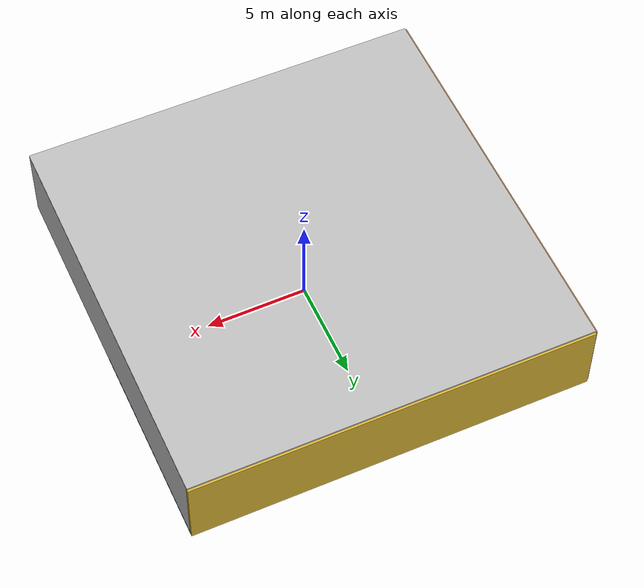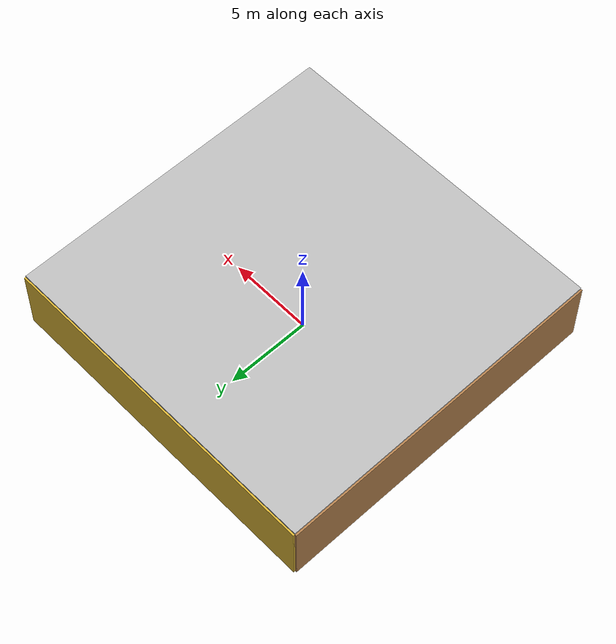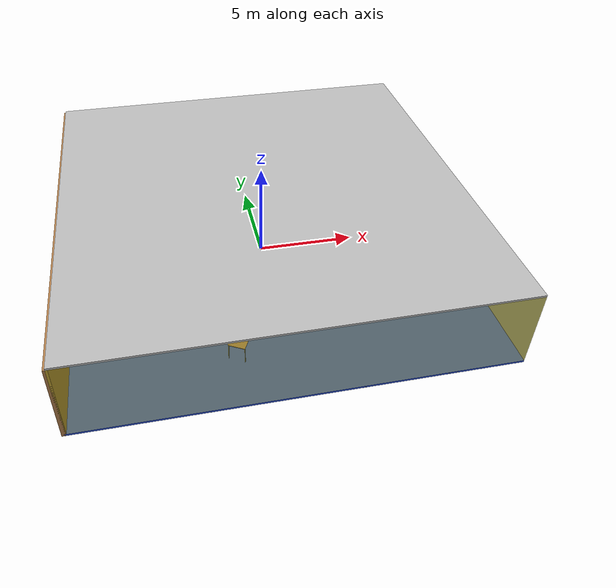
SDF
<sdf version="1.4">
 <world name="default">
  <physics type="ode">
   <max_step_size>0.001</max_step_size>
   <real_time_factor>1</real_time_factor>
   <real_time_update_rate>1000</real_time_update_rate>
   <gravity>0 0 -9.8</gravity>
  </physics>
  <scene><ambient>0.4 0.4 0.4 1</ambient><background>0.7 0.7 0.7 1</background><shadows>1</shadows></scene>
  <model name="Surrounding">
   <static>1</static>
   <link name="Ceiling">
    <collision name="Ceiling_Collision"><geometry><box><size>20 20 0.1</size></box></geometry></collision>
    <visual name="Ceiling_Visual">
     <geometry><box><size>20 20 0.1</size></box></geometry>
     <material>
      <script><uri>file://media/materials/scripts/gazebo.material</uri><name>Gazebo/LightOn</name></script>
     </material>
    </visual>
    <pose>0 0 4.05 0 0 0</pose>
   </link>
   <link name="Wall_South">
    <collision name="Wall_South_Collision">
     <geometry><box><size>20 0 4</size></box></geometry>
     <pose>0 0 2 0 -0 0</pose>
    </collision>
    <visual name="Wall_South_Visual">
     <pose>0 0 2 0 -0 0</pose>
     <geometry><box><size>20 0 4</size></box></geometry>
     <material>
      <script>
       <uri>file://media/materials/scripts/gazebo.material</uri>
       <name>Gazebo/YellowTransparent</name>
      </script>
     </material>
    </visual>
    <velocity_decay><linear>0</linear><angular>0</angular></velocity_decay>
    <pose>0 -10 0 0 -0 0</pose>
   </link>
   <link name="Wall_East">
    <collision name="Wall_21_Collision">
     <geometry><box><size>20 0 4</size></box></geometry>
     <pose>0 0 2 0 -0 0</pose>
    </collision>
    <visual name="Wall_21_Visual">
     <pose>0 0 2 0 -0 0</pose>
     <geometry><box><size>20 0 4</size></box></geometry>
     <material>
      <script><uri>file://media/materials/scripts/gazebo.material</uri><name>Gazebo/WhiteGlow</name></script>
     </material>
    </visual>
    <velocity_decay><linear>0</linear><angular>0</angular></velocity_decay>
    <pose>10 0 0 0 -0 1.5708</pose>
   </link>
   <link name="Wall_North">
    <collision name="Wall_22_Collision">
     <geometry><box><size>20 0.2 4</size></box></geometry>
     <pose>0 0 2 0 -0 0</pose>
    </collision>
    <visual name="Wall_22_Visual">
     <pose>0 0 2 0 -0 0</pose>
     <geometry><box><size>20 0.2 4</size></box></geometry>
     <material>
      <script><uri>file://media/materials/scripts/gazebo.material</uri><name>Gazebo/Gold</name></script>
     </material>
    </visual>
    <velocity_decay><linear>0</linear><angular>0</angular></velocity_decay>
    <pose>0 10 0 0 -0 0</pose>
   </link>
   <link name="Wall_West">
    <collision name="Wall_23_Collision">
     <geometry><box><size>20 0.2 4</size></box></geometry>
     <pose>0 0 2 0 -0 0</pose>
    </collision>
    <visual name="Wall_23_Visual">
     <pose>0 0 2 0 -0 0</pose>
     <geometry><box><size>20 0.2 4</size></box></geometry>
     <material>
      <script><uri>file://media/materials/scripts/gazebo.material</uri><name>Gazebo/Wood</name></script>
     </material>
    </visual>
    <velocity_decay><linear>0</linear><angular>0</angular></velocity_decay>
    <pose>-10 0 0 0 0 -1.5708</pose>
   </link>
   <link name="Ground_link">
    <collision name="collision">
     <pose>0 0 .05 0 -0 0</pose>
     <geometry><box><size>20 20 0.1</size></box></geometry>
    </collision>
    <visual name="visual">
     <pose>0 0 .05 0 -0 0</pose>
     <geometry><box><size>20 20 0.1</size></box></geometry>
     <material>
      <script><uri>file://media/materials/scripts/gazebo.material</uri><name>Gazebo/BlueLaser</name></script>
     </material>
    </visual>
   </link>
   <static>1</static>
  </model>
  <spherical_coordinates>
   <surface_model>EARTH_WGS84</surface_model>
   <latitude_deg>0</latitude_deg>
   <longitude_deg>0</longitude_deg>
   <elevation>0</elevation>
   <heading_deg>0</heading_deg>
  </spherical_coordinates>
  <light name="lightball_0" type="diffuse">
   <diffuse>0.8 0.8 0.8 1</diffuse>
   <specular>0.2 0.2 0.2 1</specular>
   <attenuation>
    <range>100</range>
    <constant>0.7</constant>
    <linear>0.01</linear>
    <quadratic>0.001</quadratic>
   </attenuation>
   <direction>-0.5 0.1 -0.9</direction>
   <pose>7.27669670618 -1.74489615405 1.97683494539 0 0 0</pose>
  </light>
  <light name="lightball_1" type="diffuse">
   <diffuse>0.8 0.8 0.8 1</diffuse>
   <specular>0.2 0.2 0.2 1</specular>
   <attenuation>
    <range>100</range>
    <constant>0.7</constant>
    <linear>0.01</linear>
    <quadratic>0.001</quadratic>
   </attenuation>
   <direction>-0.5 0.1 -0.9</direction>
   <pose>8.19736162771 -4.23634069533 1.01929934891 0 0 0</pose>
  </light>
  <light name="lightball_2" type="diffuse">
   <diffuse>0.8 0.8 0.8 1</diffuse>
   <specular>0.2 0.2 0.2 1</specular>
   <attenuation>
    <range>100</range>
    <constant>0.7</constant>
    <linear>0.01</linear>
    <quadratic>0.001</quadratic>
   </attenuation>
   <direction>-0.5 0.1 -0.9</direction>
   <pose>-6.88017945424 -4.5725959972 2.33438134413 0 0 0</pose>
  </light>
  <light name="lightball_3" type="diffuse">
   <diffuse>0.8 0.8 0.8 1</diffuse>
   <specular>0.2 0.2 0.2 1</specular>
   <attenuation>
    <range>100</range>
    <constant>0.7</constant>
    <linear>0.01</linear>
    <quadratic>0.001</quadratic>
   </attenuation>
   <direction>-0.5 0.1 -0.9</direction>
   <pose>6.15492804023 -6.01244837879 0.748864949022 0 0 0</pose>
  </light>
  <light name="lightball_4" type="diffuse">
   <diffuse>0.8 0.8 0.8 1</diffuse>
   <specular>0.2 0.2 0.2 1</specular>
   <attenuation>
    <range>100</range>
    <constant>0.7</constant>
    <linear>0.01</linear>
    <quadratic>0.001</quadratic>
   </attenuation>
   <direction>-0.5 0.1 -0.9</direction>
   <pose>-0.836308185654 -1.73037985487 0.788656056112 0 0 0</pose>
  </light>
  <light name="lightball_5" type="diffuse">
   <diffuse>0.8 0.8 0.8 1</diffuse>
   <specular>0.2 0.2 0.2 1</specular>
   <attenuation>
    <range>100</range>
    <constant>0.7</constant>
    <linear>0.01</linear>
    <quadratic>0.001</quadratic>
   </attenuation>
   <direction>-0.5 0.1 -0.9</direction>
   <pose>-3.67572528373 -9.7695210893 2.2463210103 0 0 0</pose>
  </light>
  <light name="lightball_6" type="diffuse">
   <diffuse>0.8 0.8 0.8 1</diffuse>
   <specular>0.2 0.2 0.2 1</specular>
   <attenuation>
    <range>100</range>
    <constant>0.7</constant>
    <linear>0.01</linear>
    <quadratic>0.001</quadratic>
   </attenuation>
   <direction>-0.5 0.1 -0.9</direction>
   <pose>-2.25548648234 2.80198653899 0.519554518759 0 0 0</pose>
  </light>
  <light name="lightball_7" type="diffuse">
   <diffuse>0.8 0.8 0.8 1</diffuse>
   <specular>0.2 0.2 0.2 1</specular>
   <attenuation>
    <range>100</range>
    <constant>0.7</constant>
    <linear>0.01</linear>
    <quadratic>0.001</quadratic>
   </attenuation>
   <direction>-0.5 0.1 -0.9</direction>
   <pose>-4.2696286775 -3.00034316257 1.88822229458 0 0 0</pose>
  </light>
  <light name="lightball_8" type="diffuse">
   <diffuse>0.8 0.8 0.8 1</diffuse>
   <specular>0.2 0.2 0.2 1</specular>
   <attenuation>
    <range>100</range>
    <constant>0.7</constant>
    <linear>0.01</linear>
    <quadratic>0.001</quadratic>
   </attenuation>
   <direction>-0.5 0.1 -0.9</direction>
   <pose>1.43575724032 4.74026874118 1.20976178939 0 0 0</pose>
  </light>
  <light name="lightball_9" type="diffuse">
   <diffuse>0.8 0.8 0.8 1</diffuse>
   <specular>0.2 0.2 0.2 1</specular>
   <attenuation>
    <range>100</range>
    <constant>0.7</constant>
    <linear>0.01</linear>
    <quadratic>0.001</quadratic>
   </attenuation>
   <direction>-0.5 0.1 -0.9</direction>
   <pose>6.1782698658 -5.24697569793 2.62936626123 0 0 0</pose>
  </light>
  <light name="lightball_10" type="diffuse">
   <diffuse>0.8 0.8 0.8 1</diffuse>
   <specular>0.2 0.2 0.2 1</specular>
   <attenuation>
    <range>100</range>
    <constant>0.7</constant>
    <linear>0.01</linear>
    <quadratic>0.001</quadratic>
   </attenuation>
   <direction>-0.5 0.1 -0.9</direction>
   <pose>-1.32625002946 6.60933415716 2.27185589587 0 0 0</pose>
  </light>
  <light name="lightball_11" type="diffuse">
   <diffuse>0.8 0.8 0.8 1</diffuse>
   <specular>0.2 0.2 0.2 1</specular>
   <attenuation>
    <range>100</range>
    <constant>0.7</constant>
    <linear>0.01</linear>
    <quadratic>0.001</quadratic>
   </attenuation>
   <direction>-0.5 0.1 -0.9</direction>
   <pose>9.15417011335 7.35299349008 1.24861612855 0 0 0</pose>
  </light>
  <include><uri>model://cabinet</uri><pose>-7.60404254815 2.18772997674 0 0 0 1.94349926351</pose></include>
  <include>
   <uri>model://robocup_3Dsim_goal</uri>
   <pose>-7.16884467087 7.99783830897 0 0 0 2.06823647516</pose>
  </include>
  <include><uri>model://table</uri><pose>-2.24360198345 -6.92210270293 0 0 0 1.08539678673</pose></include>
 </world>
</sdf>

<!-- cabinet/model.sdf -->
<sdf version="1.5">
  <model name="cabinet">
    <static>true</static>
    <link name="cabinet_bottom_plate">
      <inertial>
        <pose>0 0 -1 0 0 0</pose>
        <inertia>
          <ixx>2.050000</ixx>
          <ixy>0</ixy>
          <ixz>0</ixz>
          <iyy>2.050000</iyy>
          <iyz>0</iyz>
          <izz>2.050000</izz>
        </inertia>
        <mass>25.000000</mass>
      </inertial>
      <collision name="cabinet_bottom_plate_geom">
        <pose>0 0 0.010000 0 0 0</pose>
        <geometry>
          <box>
            <size>0.450000 0.450000 0.020000</size>
          </box>
        </geometry>
      </collision>
      <visual name="cabinet_bottom_plate_geom_visual">
        <pose>0 0 0.010000 0 0 0</pose>
        <geometry>
          <box>
            <size>0.450000 0.450000 0.020000</size>
          </box>
        </geometry>
        <material>
          <script>
            <uri>model://media/materials/scripts/gazebo.material</uri>
            <name>Gazebo/Wood</name>
          </script>
        </material>
      </visual>
      <collision name="cabinet_bottom_plate_geom_cabinet_back_plate">
        <pose>0.235000 0 0.510000 0 0 0</pose>
        <geometry>
          <box>
            <size>0.020000 0.450000 1.020000</size>
          </box>
        </geometry>
      </collision>
      <visual name="cabinet_bottom_plate_geom_cabinet_back_plate_visual">
        <pose>0.235000 0 0.510000 0 0 0</pose>
        <geometry>
          <box>
            <size>0.020000 0.450000 1.020000</size>
          </box>
        </geometry>
        <material>
          <script>
            <uri>model://media/materials/scripts/gazebo.material</uri>
            <name>Gazebo/Wood</name>
          </script>
        </material>
      </visual>
      <collision name="cabinet_bottom_plate_geom_cabinet_left_plate">
        <pose>0 0.235000 0.510000 0 0 0</pose>
        <geometry>
          <box>
            <size>0.450000 0.020000 1.020000</size>
          </box>
        </geometry>
      </collision>
      <visual name="cabinet_bottom_plate_geom_cabinet_left_plate_visual">
        <pose>0 0.235000 0.510000 0 0 0</pose>
        <geometry>
          <box>
            <size>0.450000 0.020000 1.020000</size>
          </box>
        </geometry>
        <material>
          <script>
            <uri>model://media/materials/scripts/gazebo.material</uri>
            <name>Gazebo/Wood</name>
          </script>
        </material>
      </visual>
      <collision name="cabinet_bottom_plate_geom_cabinet_middle_plate">
        <pose>0 0 0.510000 0 0 0</pose>
        <geometry>
          <box>
            <size>0.450000 0.450000 0.020000</size>
          </box>
        </geometry>
      </collision>
      <visual name="cabinet_bottom_plate_geom_cabinet_middle_plate_visual">
        <pose>0 0 0.510000 0 0 0</pose>
        <geometry>
          <box>
            <size>0.450000 0.450000 0.020000</size>
          </box>
        </geometry>
        <material>
          <script>
            <uri>model://media/materials/scripts/gazebo.material</uri>
            <name>Gazebo/Wood</name>
          </script>
        </material>
      </visual>
      <collision name="cabinet_bottom_plate_geom_cabinet_right_plate">
        <pose>0 -0.235000 0.510000 0 0 0</pose>
        <geometry>
          <box>
            <size>0.450000 0.020000 1.020000</size>
          </box>
        </geometry>
      </collision>
      <visual name="cabinet_bottom_plate_geom_cabinet_right_plate_visual">
        <pose>0 -0.235000 0.510000 0 0 0</pose>
        <geometry>
          <box>
            <size>0.450000 0.020000 1.020000</size>
          </box>
        </geometry>
        <material>
          <script>
            <uri>model://media/materials/scripts/gazebo.material</uri>
            <name>Gazebo/Wood</name>
          </script>
        </material>
      </visual>
      <collision name="cabinet_bottom_plate_geom_cabinet_top_plate">
        <pose>0 0 1.010000 0 0 0</pose>
        <geometry>
          <box>
            <size>0.450000 0.450000 0.020000</size>
          </box>
        </geometry>
      </collision>
      <visual name="cabinet_bottom_plate_geom_cabinet_top_plate_visual">
        <pose>0 0 1.010000 0 0 0</pose>
        <geometry>
          <box>
            <size>0.450000 0.450000 0.020000</size>
          </box>
        </geometry>
        <material>
          <script>
            <uri>model://media/materials/scripts/gazebo.material</uri>
            <name>Gazebo/Wood</name>
          </script>
        </material>
      </visual>
    </link>
  </model>
</sdf>

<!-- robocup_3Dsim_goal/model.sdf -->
<sdf version="1.5">
  <model name="robocup_3d_goal">
    <static>true</static>
    <link name="left_post">
      <pose>0 1.05 0.45 0 0 0</pose>
      <collision name="collision">
        <geometry>
          <cylinder>
            <radius>0.05</radius>
            <length>0.9</length>
          </cylinder>
        </geometry>
      </collision>
      <visual name="visual">
        <geometry>
          <cylinder>
            <radius>0.05</radius>
            <length>0.9</length>
          </cylinder>
        </geometry>
        <material>
          <script>
            <uri>file://media/materials/scripts/gazebo.material</uri>
            <name>Gazebo/ZincYellow</name>
          </script>
        </material>
      </visual>
    </link>
    <link name="left_support_horiz_lower">
      <pose>0.30 1.05 0.01 0 0 0</pose>
      <collision name="collision">
        <geometry>
          <box>
            <size>0.50 0.02 0.02</size>
          </box>
        </geometry>
      </collision>
      <visual name="visual">
        <geometry>
          <box>
            <size>0.50 0.02 0.02</size>
          </box>
        </geometry>
        <material>
          <script>
            <uri>file://media/materials/scripts/gazebo.material</uri>
            <name>Gazebo/White</name>
          </script>
        </material>
      </visual>
    </link>
    <link name="left_support_horiz_upper">
      <pose>0.30 1.05 0.79 0 0 0</pose>
      <collision name="collision">
        <geometry>
          <box>
            <size>0.50 0.02 0.02</size>
          </box>
        </geometry>
      </collision>
      <visual name="visual">
        <geometry>
          <box>
            <size>0.50 0.02 0.02</size>
          </box>
        </geometry>
        <material>
          <script>
            <uri>file://media/materials/scripts/gazebo.material</uri>
            <name>Gazebo/White</name>
          </script>
        </material>
      </visual>
    </link>
    <link name="left_support_vertical">
      <pose>0.56 1.05 0.4 0 1.5708 0</pose>
      <collision name="collision">
        <geometry>
          <box>
            <size>0.80 0.02 0.02</size>
          </box>
        </geometry>
      </collision>
      <visual name="visual">
        <geometry>
          <box>
            <size>0.80 0.02 0.02</size>
          </box>
        </geometry>
        <material>
          <script>
            <uri>file://media/materials/scripts/gazebo.material</uri>
            <name>Gazebo/White</name>
          </script>
        </material>
      </visual>
    </link>
    <link name="right_support_horiz_lower">
      <pose>0.30 -1.05 0.01 0 0 0</pose>
      <collision name="collision">
        <geometry>
          <box>
            <size>0.50 0.02 0.02</size>
          </box>
        </geometry>
      </collision>
      <visual name="visual">
        <geometry>
          <box>
            <size>0.50 0.02 0.02</size>
          </box>
        </geometry>
        <material>
          <script>
            <uri>file://media/materials/scripts/gazebo.material</uri>
            <name>Gazebo/White</name>
          </script>
        </material>
      </visual>
    </link>
    <link name="right_support_horiz_upper">
      <pose>0.30 -1.05 0.79 0 0 0</pose>
      <collision name="collision">
        <geometry>
          <box>
            <size>0.50 0.02 0.02</size>
          </box>
        </geometry>
      </collision>
      <visual name="visual">
        <geometry>
          <box>
            <size>0.50 0.02 0.02</size>
          </box>
        </geometry>
        <material>
          <script>
            <uri>file://media/materials/scripts/gazebo.material</uri>
            <name>Gazebo/White</name>
          </script>
        </material>
      </visual>
    </link>
    <link name="right_support_vertical">
      <pose>0.56 -1.05 0.4 0 1.5708 0</pose>
      <collision name="collision">
        <geometry>
          <box>
            <size>0.80 0.02 0.02</size>
          </box>
        </geometry>
      </collision>
      <visual name="visual">
        <geometry>
          <box>
            <size>0.80 0.02 0.02</size>
          </box>
        </geometry>
        <material>
          <script>
            <uri>file://media/materials/scripts/gazebo.material</uri>
            <name>Gazebo/White</name>
          </script>
        </material>
      </visual>
    </link>
    <link name="center_support_horiz_lower">
      <pose>0.56 0 0.01 0 1.5708 0</pose>
      <collision name="collision">
        <geometry>
          <box>
            <size>0.02 2.08 0.02</size>
          </box>
        </geometry>
      </collision>
      <visual name="visual">
        <geometry>
          <box>
            <size>0.02 2.08 0.02</size>
          </box>
        </geometry>
        <material>
          <script>
            <uri>file://media/materials/scripts/gazebo.material</uri>
            <name>Gazebo/White</name>
          </script>
        </material>
      </visual>
    </link>
    <link name="center_support_horiz_upper">
      <pose>0.56 0 0.79 0 1.5708 0</pose>
      <collision name="collision">
        <geometry>
          <box>
            <size>0.02 2.08 0.02</size>
          </box>
        </geometry>
      </collision>
      <visual name="visual">
        <geometry>
          <box>
            <size>0.02 2.08 0.02</size>
          </box>
        </geometry>
        <material>
          <script>
            <uri>file://media/materials/scripts/gazebo.material</uri>
            <name>Gazebo/White</name>
          </script>
        </material>
      </visual>
    </link>
    <link name="right_post">
      <pose>0 -1.05 0.45 0 0 0</pose>
      <collision name="collision">
        <geometry>
          <cylinder>
            <radius>0.05</radius>
            <length>0.9</length>
          </cylinder>
        </geometry>
      </collision>
      <visual name="visual">
        <geometry>
          <cylinder>
            <radius>0.05</radius>
            <length>0.9</length>
          </cylinder>
        </geometry>
        <material>
          <script>
            <uri>file://media/materials/scripts/gazebo.material</uri>
            <name>Gazebo/ZincYellow</name>
          </script>
        </material>
      </visual>
    </link>
    <link name="crossbar">
      <pose>0 0 0.85 1.57 1.57 0</pose>
      <collision name="collision">
        <geometry>
          <cylinder>
            <radius>0.05</radius>
            <length>2.0</length>
          </cylinder>
        </geometry>
      </collision>
      <visual name="visual">
        <geometry>
          <cylinder>
            <radius>0.05</radius>
            <length>2.0</length>
          </cylinder>
        </geometry>
        <material>
          <script>
            <uri>file://media/materials/scripts/gazebo.material</uri>
            <name>Gazebo/ZincYellow</name>
          </script>
        </material>
      </visual>
    </link>
    <link name="center_net">
      <pose>0.56 0 0.40 0 0 0</pose>
      <collision name="collision">
        <geometry>
          <box>
            <size>0.01 2.1 0.80</size>
          </box>
        </geometry>
      </collision>
      <visual name="visual">
        <geometry>
          <box>
            <size>0.01 2.1 0.80</size>
          </box>
        </geometry>
        <material>
          <script>
            <uri>model://../model_source/models/robocup09_spl_field/materials/scripts/</uri>
            <uri>model://../model_source/models/robocup09_spl_field/materials/textures/</uri>
            <name>RoboCup/Net</name>
          </script>
        </material>
      </visual>
    </link>
    <link name="left_net">
      <pose>0.30 1.05 0.40 0 0 0</pose>
      <collision name="collision">
        <geometry>
          <box>
            <size>0.50 0.01 0.76</size>
          </box>
        </geometry>
      </collision>
      <visual name="visual">
        <geometry>
          <box>
            <size>0.50 0.01 0.76</size>
          </box>
        </geometry>
        <material>
          <script>
            <uri>model://../model_source/models/robocup09_spl_field/materials/scripts/</uri>
            <uri>model://../model_source/models/robocup09_spl_field/materials/textures/</uri>
            <name>RoboCup/Net</name>
          </script>
        </material>
      </visual>
    </link>
    <link name="right_net">
      <pose>0.30 -1.05 0.40 0 0 0</pose>
      <collision name="collision">
        <geometry>
          <box>
            <size>0.50 0.01 0.76</size>
          </box>
        </geometry>
      </collision>
      <visual name="visual">
        <geometry>
          <box>
            <size>0.50 0.01 0.76</size>
          </box>
        </geometry>
        <material>
          <script>
            <uri>model://../model_source/models/robocup09_spl_field/materials/scripts/</uri>
            <uri>model://../model_source/models/robocup09_spl_field/materials/textures/</uri>
            <name>RoboCup/Net</name>
          </script>
        </material>
      </visual>
    </link>
  </model>
</sdf>

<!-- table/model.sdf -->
<sdf version="1.5">
  <model name="table">
    <static>true</static>
    <link name="link">
      <collision name="surface">
        <pose>0 0 1.0 0 0 0</pose>
        <geometry>
          <box>
            <size>1.5 0.8 0.03</size>
          </box>
        </geometry>
        <surface>
          <friction>
            <ode>
              <mu>0.6</mu>
              <mu2>0.6</mu2>
            </ode>
          </friction>
        </surface>
      </collision>
      <visual name="visual1">
        <pose>0 0 1.0 0 0 0</pose>
        <geometry>
          <box>
            <size>1.5 0.8 0.03</size>
          </box>
        </geometry>
        <material>
          <script>
            <uri>model://media/materials/scripts/gazebo.material</uri>
            <name>Gazebo/Wood</name>
          </script>
        </material>
      </visual>
      <collision name="front_left_leg">
        <pose>0.68 0.38 0.5 0 0 0</pose>
        <geometry>
          <cylinder>
            <radius>0.02</radius>
            <length>1.0</length>
          </cylinder>
        </geometry>
      </collision>
      <visual name="front_left_leg">
        <pose>0.68 0.38 0.5 0 0 0</pose>
        <geometry>
          <cylinder>
            <radius>0.02</radius>
            <length>1.0</length>
          </cylinder>
        </geometry>
        <material>
          <script>
            <uri>model://media/materials/scripts/gazebo.material</uri>
            <name>Gazebo/Grey</name>
          </script>
        </material>
      </visual>
      <collision name="front_right_leg">
        <pose>0.68 -0.38 0.5 0 0 0</pose>
        <geometry>
          <cylinder>
            <radius>0.02</radius>
            <length>1.0</length>
          </cylinder>
        </geometry>
      </collision>
      <visual name="front_right_leg">
        <pose>0.68 -0.38 0.5 0 0 0</pose>
        <geometry>
          <cylinder>
            <radius>0.02</radius>
            <length>1.0</length>
          </cylinder>
        </geometry>
        <material>
          <script>
            <uri>model://media/materials/scripts/gazebo.material</uri>
            <name>Gazebo/Grey</name>
          </script>
        </material>
      </visual>
      <collision name="back_right_leg">
        <pose>-0.68 -0.38 0.5 0 0 0</pose>
        <geometry>
          <cylinder>
            <radius>0.02</radius>
            <length>1.0</length>
          </cylinder>
        </geometry>
      </collision>
      <visual name="back_right_leg">
        <pose>-0.68 -0.38 0.5 0 0 0</pose>
        <geometry>
          <cylinder>
            <radius>0.02</radius>
            <length>1.0</length>
          </cylinder>
        </geometry>
        <material>
          <script>
            <uri>model://media/materials/scripts/gazebo.material</uri>
            <name>Gazebo/Grey</name>
          </script>
        </material>
      </visual>
      <collision name="back_left_leg">
        <pose>-0.68 0.38 0.5 0 0 0</pose>
        <geometry>
          <cylinder>
            <radius>0.02</radius>
            <length>1.0</length>
          </cylinder>
        </geometry>
      </collision>
      <visual name="back_left_leg">
        <pose>-0.68 0.38 0.5 0 0 0</pose>
        <geometry>
          <cylinder>
            <radius>0.02</radius>
            <length>1.0</length>
          </cylinder>
        </geometry>
        <material>
          <script>
            <uri>model://media/materials/scripts/gazebo.material</uri>
            <name>Gazebo/Grey</name>
          </script>
        </material>
      </visual>
    </link>
  </model>
</sdf>
